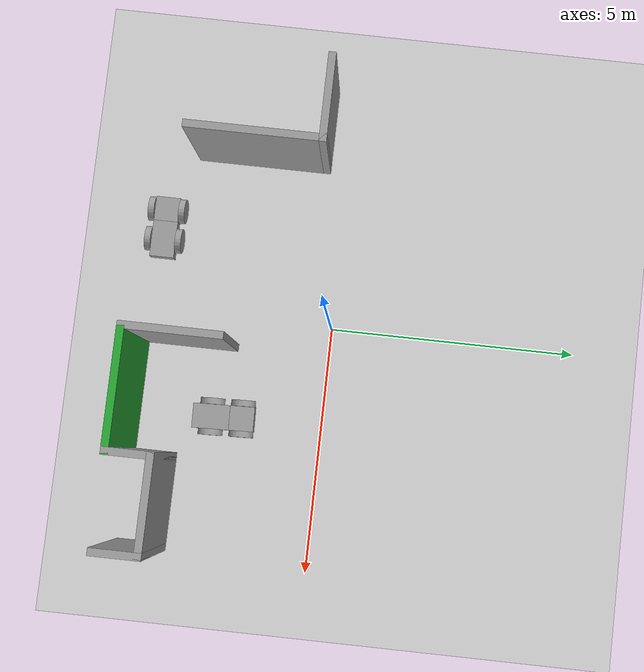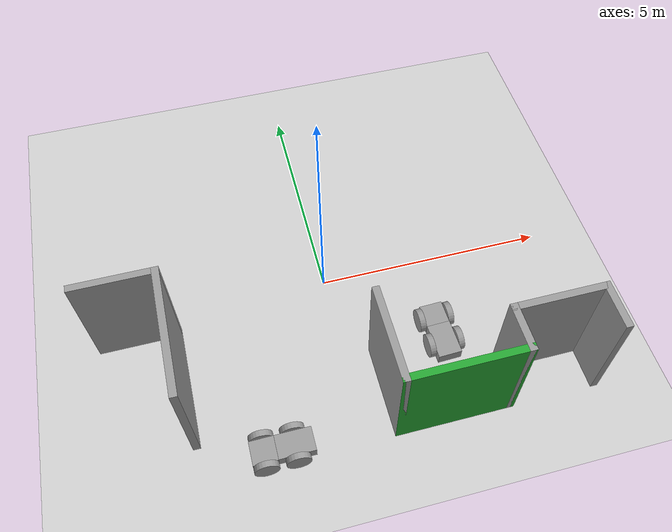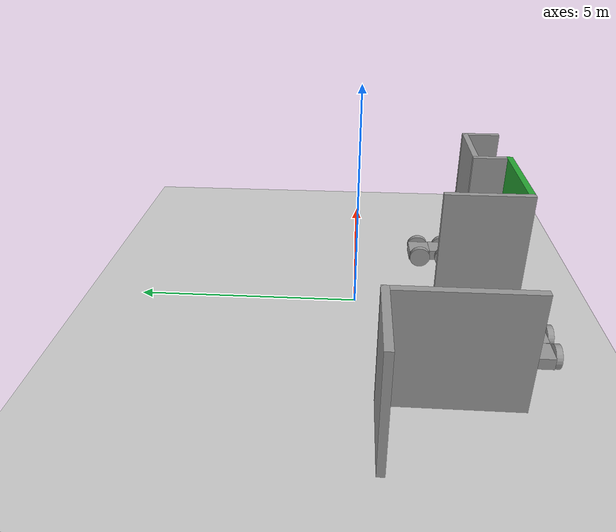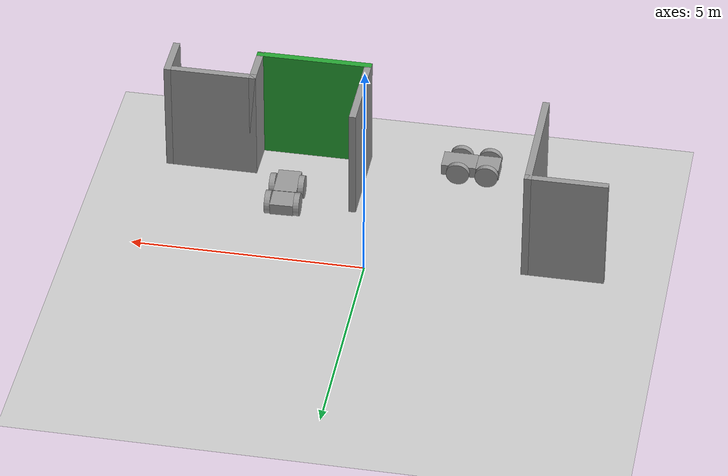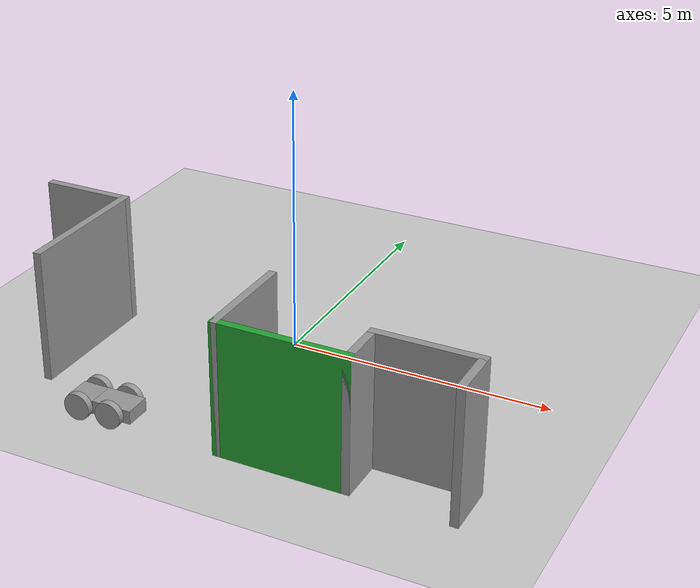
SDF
<sdf version="1.7">
 <world name="default">
  <model name="ground_plane">
   <static>1</static>
   <link name="link">
    <collision name="collision">
     <geometry><plane><normal>0 0 1</normal><size>100 100</size></plane></geometry>
     <surface><friction><ode><mu>100</mu><mu2>50</mu2></ode></friction></surface>
    </collision>
    <visual name="visual">
     <cast_shadows>0</cast_shadows>
     <geometry><plane><normal>0 0 1</normal><size>100 100</size></plane></geometry>
     <material>
      <script><uri>file://media/materials/scripts/gazebo.material</uri><name>Gazebo/Grey</name></script>
     </material>
    </visual>
   </link>
  </model>
  <model name="pj1_robo_1_clone">
   <link name="link_0">
    <pose>-0.3125 0 -0.006249 0 -0 0</pose>
    <inertial>
     <mass>1</mass>
     <inertia>
      <ixx>0.166667</ixx>
      <ixy>0</ixy>
      <ixz>0</ixz>
      <iyy>0.166667</iyy>
      <iyz>0</iyz>
      <izz>0.166667</izz>
     </inertia>
    </inertial>
    <visual name="visual">
     <geometry><box><size>0.5 0.5 0.25</size></box></geometry>
     <material>
      <lighting>1</lighting>
      <script><uri>file://media/materials/scripts/gazebo.material</uri><name>Gazebo/Grey</name></script>
      <shader type="pixel"><normal_map>__default__</normal_map></shader>
      <ambient>0.3 0.3 0.3 1</ambient>
      <diffuse>0.7 0.7 0.7 1</diffuse>
      <specular>0.01 0.01 0.01 1</specular>
      <emissive>0 0 0 1</emissive>
     </material>
    </visual>
    <collision name="collision">
     <geometry><box><size>0.5 0.5 0.25</size></box></geometry>
     <surface>
      <friction>
       <ode><mu>1</mu><mu2>1</mu2><fdir1>0 0 0</fdir1><slip1>0</slip1><slip2>0</slip2></ode>
       <torsional>
        <coefficient>1</coefficient>
        <patch_radius>0</patch_radius>
        <surface_radius>0</surface_radius>
        <use_patch_radius>1</use_patch_radius>
        <ode><slip>0</slip></ode>
       </torsional>
      </friction>
      <bounce><restitution_coefficient>0</restitution_coefficient><threshold>1e+06</threshold></bounce>
      <contact>
       <collide_without_contact>0</collide_without_contact>
       <collide_without_contact_bitmask>1</collide_without_contact_bitmask>
       <collide_bitmask>1</collide_bitmask>
       <ode>
        <soft_cfm>0</soft_cfm>
        <soft_erp>0.2</soft_erp>
        <kp>1e+13</kp>
        <kd>1</kd>
        <max_vel>0.01</max_vel>
        <min_depth>0</min_depth>
       </ode>
       <bullet>
        <split_impulse>1</split_impulse>
        <split_impulse_penetration_threshold>-0.01</split_impulse_penetration_threshold>
        <soft_cfm>0</soft_cfm>
        <soft_erp>0.2</soft_erp>
        <kp>1e+13</kp>
        <kd>1</kd>
       </bullet>
      </contact>
     </surface>
    </collision>
   </link>
   <link name="link_0_clone">
    <pose>0.3125 0 0.001251 0 -0 0</pose>
    <inertial>
     <mass>1</mass>
     <inertia>
      <ixx>0.166667</ixx>
      <ixy>0</ixy>
      <ixz>0</ixz>
      <iyy>0.166667</iyy>
      <iyz>0</iyz>
      <izz>0.166667</izz>
     </inertia>
    </inertial>
    <visual name="visual">
     <geometry><box><size>0.75 0.5 0.25</size></box></geometry>
     <material>
      <lighting>1</lighting>
      <script><uri>file://media/materials/scripts/gazebo.material</uri><name>Gazebo/Grey</name></script>
      <shader type="pixel"><normal_map>__default__</normal_map></shader>
      <ambient>0.3 0.3 0.3 1</ambient>
      <diffuse>0.7 0.7 0.7 1</diffuse>
      <specular>0.01 0.01 0.01 1</specular>
      <emissive>0 0 0 1</emissive>
     </material>
    </visual>
    <collision name="collision">
     <geometry><box><size>0.75 0.5 0.25</size></box></geometry>
     <surface>
      <friction>
       <ode><mu>1</mu><mu2>1</mu2><fdir1>0 0 0</fdir1><slip1>0</slip1><slip2>0</slip2></ode>
       <torsional>
        <coefficient>1</coefficient>
        <patch_radius>0</patch_radius>
        <surface_radius>0</surface_radius>
        <use_patch_radius>1</use_patch_radius>
        <ode><slip>0</slip></ode>
       </torsional>
      </friction>
      <bounce><restitution_coefficient>0</restitution_coefficient><threshold>1e+06</threshold></bounce>
      <contact>
       <collide_without_contact>0</collide_without_contact>
       <collide_without_contact_bitmask>1</collide_without_contact_bitmask>
       <collide_bitmask>1</collide_bitmask>
       <ode>
        <soft_cfm>0</soft_cfm>
        <soft_erp>0.2</soft_erp>
        <kp>1e+13</kp>
        <kd>1</kd>
        <max_vel>0.01</max_vel>
        <min_depth>0</min_depth>
       </ode>
       <bullet>
        <split_impulse>1</split_impulse>
        <split_impulse_penetration_threshold>-0.01</split_impulse_penetration_threshold>
        <soft_cfm>0</soft_cfm>
        <soft_erp>0.2</soft_erp>
        <kp>1e+13</kp>
        <kd>1</kd>
       </bullet>
      </contact>
     </surface>
    </collision>
   </link>
   <link name="link_1">
    <pose>-0.3125 -0.312524 0.001247 1.5707 -0 0</pose>
    <inertial>
     <mass>1</mass>
     <inertia><ixx>0.145833</ixx><ixy>0</ixy><ixz>0</ixz><iyy>0.145833</iyy><iyz>0</iyz><izz>0.125</izz></inertia>
    </inertial>
    <visual name="visual">
     <geometry><cylinder><radius>0.25</radius><length>0.125</length></cylinder></geometry>
     <material>
      <lighting>1</lighting>
      <script><uri>file://media/materials/scripts/gazebo.material</uri><name>Gazebo/Grey</name></script>
      <shader type="pixel"><normal_map>__default__</normal_map></shader>
      <ambient>0.3 0.3 0.3 1</ambient>
      <diffuse>0.7 0.7 0.7 1</diffuse>
      <specular>0.01 0.01 0.01 1</specular>
      <emissive>0 0 0 1</emissive>
     </material>
    </visual>
    <collision name="collision">
     <geometry><cylinder><radius>0.25</radius><length>0.125</length></cylinder></geometry>
     <surface>
      <friction>
       <ode><mu>1</mu><mu2>1</mu2><fdir1>0 0 0</fdir1><slip1>0</slip1><slip2>0</slip2></ode>
       <torsional>
        <coefficient>1</coefficient>
        <patch_radius>0</patch_radius>
        <surface_radius>0</surface_radius>
        <use_patch_radius>1</use_patch_radius>
        <ode><slip>0</slip></ode>
       </torsional>
      </friction>
      <bounce><restitution_coefficient>0</restitution_coefficient><threshold>1e+06</threshold></bounce>
      <contact>
       <collide_without_contact>0</collide_without_contact>
       <collide_without_contact_bitmask>1</collide_without_contact_bitmask>
       <collide_bitmask>1</collide_bitmask>
       <ode>
        <soft_cfm>0</soft_cfm>
        <soft_erp>0.2</soft_erp>
        <kp>1e+13</kp>
        <kd>1</kd>
        <max_vel>0.01</max_vel>
        <min_depth>0</min_depth>
       </ode>
       <bullet>
        <split_impulse>1</split_impulse>
        <split_impulse_penetration_threshold>-0.01</split_impulse_penetration_threshold>
        <soft_cfm>0</soft_cfm>
        <soft_erp>0.2</soft_erp>
        <kp>1e+13</kp>
        <kd>1</kd>
       </bullet>
      </contact>
     </surface>
    </collision>
   </link>
   <link name="link_1_clone">
    <pose>-0.3125 0.312524 0.001251 1.5707 -0 0</pose>
    <inertial>
     <mass>1</mass>
     <inertia><ixx>0.145833</ixx><ixy>0</ixy><ixz>0</ixz><iyy>0.145833</iyy><iyz>0</iyz><izz>0.125</izz></inertia>
    </inertial>
    <visual name="visual">
     <geometry><cylinder><radius>0.25</radius><length>0.125</length></cylinder></geometry>
     <material>
      <lighting>1</lighting>
      <script><uri>file://media/materials/scripts/gazebo.material</uri><name>Gazebo/Grey</name></script>
      <shader type="pixel"><normal_map>__default__</normal_map></shader>
      <ambient>0.3 0.3 0.3 1</ambient>
      <diffuse>0.7 0.7 0.7 1</diffuse>
      <specular>0.01 0.01 0.01 1</specular>
      <emissive>0 0 0 1</emissive>
     </material>
    </visual>
    <collision name="collision">
     <geometry><cylinder><radius>0.25</radius><length>0.125</length></cylinder></geometry>
     <surface>
      <friction>
       <ode><mu>1</mu><mu2>1</mu2><fdir1>0 0 0</fdir1><slip1>0</slip1><slip2>0</slip2></ode>
       <torsional>
        <coefficient>1</coefficient>
        <patch_radius>0</patch_radius>
        <surface_radius>0</surface_radius>
        <use_patch_radius>1</use_patch_radius>
        <ode><slip>0</slip></ode>
       </torsional>
      </friction>
      <bounce><restitution_coefficient>0</restitution_coefficient><threshold>1e+06</threshold></bounce>
      <contact>
       <collide_without_contact>0</collide_without_contact>
       <collide_without_contact_bitmask>1</collide_without_contact_bitmask>
       <collide_bitmask>1</collide_bitmask>
       <ode>
        <soft_cfm>0</soft_cfm>
        <soft_erp>0.2</soft_erp>
        <kp>1e+13</kp>
        <kd>1</kd>
        <max_vel>0.01</max_vel>
        <min_depth>0</min_depth>
       </ode>
       <bullet>
        <split_impulse>1</split_impulse>
        <split_impulse_penetration_threshold>-0.01</split_impulse_penetration_threshold>
        <soft_cfm>0</soft_cfm>
        <soft_erp>0.2</soft_erp>
        <kp>1e+13</kp>
        <kd>1</kd>
       </bullet>
      </contact>
     </surface>
    </collision>
   </link>
   <link name="link_1_clone_0">
    <pose>0.3125 -0.312524 0.001251 1.5707 -0 0</pose>
    <inertial>
     <mass>1</mass>
     <inertia><ixx>0.145833</ixx><ixy>0</ixy><ixz>0</ixz><iyy>0.145833</iyy><iyz>0</iyz><izz>0.125</izz></inertia>
    </inertial>
    <visual name="visual">
     <geometry><cylinder><radius>0.25</radius><length>0.125</length></cylinder></geometry>
     <material>
      <lighting>1</lighting>
      <script><uri>file://media/materials/scripts/gazebo.material</uri><name>Gazebo/Grey</name></script>
      <shader type="pixel"><normal_map>__default__</normal_map></shader>
      <ambient>0.3 0.3 0.3 1</ambient>
      <diffuse>0.7 0.7 0.7 1</diffuse>
      <specular>0.01 0.01 0.01 1</specular>
      <emissive>0 0 0 1</emissive>
     </material>
    </visual>
    <collision name="collision">
     <geometry><cylinder><radius>0.25</radius><length>0.125</length></cylinder></geometry>
     <surface>
      <friction>
       <ode><mu>1</mu><mu2>1</mu2><fdir1>0 0 0</fdir1><slip1>0</slip1><slip2>0</slip2></ode>
       <torsional>
        <coefficient>1</coefficient>
        <patch_radius>0</patch_radius>
        <surface_radius>0</surface_radius>
        <use_patch_radius>1</use_patch_radius>
        <ode><slip>0</slip></ode>
       </torsional>
      </friction>
      <bounce><restitution_coefficient>0</restitution_coefficient><threshold>1e+06</threshold></bounce>
      <contact>
       <collide_without_contact>0</collide_without_contact>
       <collide_without_contact_bitmask>1</collide_without_contact_bitmask>
       <collide_bitmask>1</collide_bitmask>
       <ode>
        <soft_cfm>0</soft_cfm>
        <soft_erp>0.2</soft_erp>
        <kp>1e+13</kp>
        <kd>1</kd>
        <max_vel>0.01</max_vel>
        <min_depth>0</min_depth>
       </ode>
       <bullet>
        <split_impulse>1</split_impulse>
        <split_impulse_penetration_threshold>-0.01</split_impulse_penetration_threshold>
        <soft_cfm>0</soft_cfm>
        <soft_erp>0.2</soft_erp>
        <kp>1e+13</kp>
        <kd>1</kd>
       </bullet>
      </contact>
     </surface>
    </collision>
   </link>
   <link name="link_1_clone_1">
    <pose>0.3125 0.312524 0.001251 1.5707 -0 0</pose>
    <inertial>
     <mass>1</mass>
     <inertia><ixx>0.145833</ixx><ixy>0</ixy><ixz>0</ixz><iyy>0.145833</iyy><iyz>0</iyz><izz>0.125</izz></inertia>
    </inertial>
    <visual name="visual">
     <geometry><cylinder><radius>0.25</radius><length>0.125</length></cylinder></geometry>
     <material>
      <lighting>1</lighting>
      <script><uri>file://media/materials/scripts/gazebo.material</uri><name>Gazebo/Grey</name></script>
      <shader type="pixel"><normal_map>__default__</normal_map></shader>
      <ambient>0.3 0.3 0.3 1</ambient>
      <diffuse>0.7 0.7 0.7 1</diffuse>
      <specular>0.01 0.01 0.01 1</specular>
      <emissive>0 0 0 1</emissive>
     </material>
    </visual>
    <collision name="collision">
     <geometry><cylinder><radius>0.25</radius><length>0.125</length></cylinder></geometry>
     <surface>
      <friction>
       <ode><mu>1</mu><mu2>1</mu2><fdir1>0 0 0</fdir1><slip1>0</slip1><slip2>0</slip2></ode>
       <torsional>
        <coefficient>1</coefficient>
        <patch_radius>0</patch_radius>
        <surface_radius>0</surface_radius>
        <use_patch_radius>1</use_patch_radius>
        <ode><slip>0</slip></ode>
       </torsional>
      </friction>
      <bounce><restitution_coefficient>0</restitution_coefficient><threshold>1e+06</threshold></bounce>
      <contact>
       <collide_without_contact>0</collide_without_contact>
       <collide_without_contact_bitmask>1</collide_without_contact_bitmask>
       <collide_bitmask>1</collide_bitmask>
       <ode>
        <soft_cfm>0</soft_cfm>
        <soft_erp>0.2</soft_erp>
        <kp>1e+13</kp>
        <kd>1</kd>
        <max_vel>0.01</max_vel>
        <min_depth>0</min_depth>
       </ode>
       <bullet>
        <split_impulse>1</split_impulse>
        <split_impulse_penetration_threshold>-0.01</split_impulse_penetration_threshold>
        <soft_cfm>0</soft_cfm>
        <soft_erp>0.2</soft_erp>
        <kp>1e+13</kp>
        <kd>1</kd>
       </bullet>
      </contact>
     </surface>
    </collision>
   </link>
   <joint name="link_0_JOINT_1" type="fixed">
    <parent>link_0</parent>
    <child>link_0_clone</child>
    <physics>
     <ode><limit><cfm>0</cfm><erp>0.2</erp></limit><suspension><cfm>0</cfm><erp>0.2</erp></suspension></ode>
    </physics>
   </joint>
   <joint name="link_0_JOINT_2" type="revolute">
    <parent>link_0</parent>
    <child>link_1</child>
    <axis>
     <xyz>1 0 0</xyz>
     <limit>
      <lower>-1.79769e+308</lower>
      <upper>1.79769e+308</upper>
      <effort>-1</effort>
      <velocity>-1</velocity>
     </limit>
     <dynamics>
      <spring_reference>0</spring_reference>
      <spring_stiffness>0</spring_stiffness>
      <damping>0</damping>
     </dynamics>
    </axis>
    <physics>
     <ode><limit><cfm>0</cfm><erp>0.2</erp></limit><suspension><cfm>0</cfm><erp>0.2</erp></suspension></ode>
    </physics>
   </joint>
   <joint name="link_0_JOINT_3" type="revolute">
    <parent>link_0</parent>
    <child>link_1_clone</child>
    <axis>
     <xyz>1 0 0</xyz>
     <limit>
      <lower>-1.79769e+308</lower>
      <upper>1.79769e+308</upper>
      <effort>-1</effort>
      <velocity>-1</velocity>
     </limit>
     <dynamics>
      <spring_reference>0</spring_reference>
      <spring_stiffness>0</spring_stiffness>
      <damping>0</damping>
     </dynamics>
    </axis>
    <physics>
     <ode><limit><cfm>0</cfm><erp>0.2</erp></limit><suspension><cfm>0</cfm><erp>0.2</erp></suspension></ode>
    </physics>
   </joint>
   <joint name="link_0_clone_JOINT_4" type="revolute">
    <parent>link_0_clone</parent>
    <child>link_1_clone_1</child>
    <axis>
     <xyz>1 0 0</xyz>
     <limit>
      <lower>-1.79769e+308</lower>
      <upper>1.79769e+308</upper>
      <effort>-1</effort>
      <velocity>-1</velocity>
     </limit>
     <dynamics>
      <spring_reference>0</spring_reference>
      <spring_stiffness>0</spring_stiffness>
      <damping>0</damping>
     </dynamics>
    </axis>
    <physics>
     <ode><limit><cfm>0</cfm><erp>0.2</erp></limit><suspension><cfm>0</cfm><erp>0.2</erp></suspension></ode>
    </physics>
   </joint>
   <joint name="link_0_clone_JOINT_5" type="revolute">
    <parent>link_0_clone</parent>
    <child>link_1_clone_0</child>
    <axis>
     <xyz>1 0 0</xyz>
     <limit>
      <lower>-1.79769e+308</lower>
      <upper>1.79769e+308</upper>
      <effort>-1</effort>
      <velocity>-1</velocity>
     </limit>
     <dynamics>
      <spring_reference>0</spring_reference>
      <spring_stiffness>0</spring_stiffness>
      <damping>0</damping>
     </dynamics>
    </axis>
    <physics>
     <ode><limit><cfm>0</cfm><erp>0.2</erp></limit><suspension><cfm>0</cfm><erp>0.2</erp></suspension></ode>
    </physics>
   </joint>
   <static>0</static>
   <pose>2.05212 -1.91405 0.24875 -3e-06 6e-06 -1.54149</pose>
  </model>
  <model name="pj1_robo_1_clone_clone">
   <link name="link_0">
    <pose>-0.3125 0 -0.006249 0 -0 0</pose>
    <inertial>
     <mass>1</mass>
     <inertia>
      <ixx>0.166667</ixx>
      <ixy>0</ixy>
      <ixz>0</ixz>
      <iyy>0.166667</iyy>
      <iyz>0</iyz>
      <izz>0.166667</izz>
     </inertia>
    </inertial>
    <visual name="visual">
     <geometry><box><size>0.5 0.5 0.25</size></box></geometry>
     <material>
      <lighting>1</lighting>
      <script><uri>file://media/materials/scripts/gazebo.material</uri><name>Gazebo/Grey</name></script>
      <shader type="pixel"><normal_map>__default__</normal_map></shader>
      <ambient>0.3 0.3 0.3 1</ambient>
      <diffuse>0.7 0.7 0.7 1</diffuse>
      <specular>0.01 0.01 0.01 1</specular>
      <emissive>0 0 0 1</emissive>
     </material>
    </visual>
    <collision name="collision">
     <geometry><box><size>0.5 0.5 0.25</size></box></geometry>
     <surface>
      <friction>
       <ode><mu>1</mu><mu2>1</mu2><fdir1>0 0 0</fdir1><slip1>0</slip1><slip2>0</slip2></ode>
       <torsional>
        <coefficient>1</coefficient>
        <patch_radius>0</patch_radius>
        <surface_radius>0</surface_radius>
        <use_patch_radius>1</use_patch_radius>
        <ode><slip>0</slip></ode>
       </torsional>
      </friction>
      <bounce><restitution_coefficient>0</restitution_coefficient><threshold>1e+06</threshold></bounce>
      <contact>
       <collide_without_contact>0</collide_without_contact>
       <collide_without_contact_bitmask>1</collide_without_contact_bitmask>
       <collide_bitmask>1</collide_bitmask>
       <ode>
        <soft_cfm>0</soft_cfm>
        <soft_erp>0.2</soft_erp>
        <kp>1e+13</kp>
        <kd>1</kd>
        <max_vel>0.01</max_vel>
        <min_depth>0</min_depth>
       </ode>
       <bullet>
        <split_impulse>1</split_impulse>
        <split_impulse_penetration_threshold>-0.01</split_impulse_penetration_threshold>
        <soft_cfm>0</soft_cfm>
        <soft_erp>0.2</soft_erp>
        <kp>1e+13</kp>
        <kd>1</kd>
       </bullet>
      </contact>
     </surface>
    </collision>
   </link>
   <link name="link_0_clone">
    <pose>0.3125 0 0.001251 0 -0 0</pose>
    <inertial>
     <mass>1</mass>
     <inertia>
      <ixx>0.166667</ixx>
      <ixy>0</ixy>
      <ixz>0</ixz>
      <iyy>0.166667</iyy>
      <iyz>0</iyz>
      <izz>0.166667</izz>
     </inertia>
    </inertial>
    <visual name="visual">
     <geometry><box><size>0.75 0.5 0.25</size></box></geometry>
     <material>
      <lighting>1</lighting>
      <script><uri>file://media/materials/scripts/gazebo.material</uri><name>Gazebo/Grey</name></script>
      <shader type="pixel"><normal_map>__default__</normal_map></shader>
      <ambient>0.3 0.3 0.3 1</ambient>
      <diffuse>0.7 0.7 0.7 1</diffuse>
      <specular>0.01 0.01 0.01 1</specular>
      <emissive>0 0 0 1</emissive>
     </material>
    </visual>
    <collision name="collision">
     <geometry><box><size>0.75 0.5 0.25</size></box></geometry>
     <surface>
      <friction>
       <ode><mu>1</mu><mu2>1</mu2><fdir1>0 0 0</fdir1><slip1>0</slip1><slip2>0</slip2></ode>
       <torsional>
        <coefficient>1</coefficient>
        <patch_radius>0</patch_radius>
        <surface_radius>0</surface_radius>
        <use_patch_radius>1</use_patch_radius>
        <ode><slip>0</slip></ode>
       </torsional>
      </friction>
      <bounce><restitution_coefficient>0</restitution_coefficient><threshold>1e+06</threshold></bounce>
      <contact>
       <collide_without_contact>0</collide_without_contact>
       <collide_without_contact_bitmask>1</collide_without_contact_bitmask>
       <collide_bitmask>1</collide_bitmask>
       <ode>
        <soft_cfm>0</soft_cfm>
        <soft_erp>0.2</soft_erp>
        <kp>1e+13</kp>
        <kd>1</kd>
        <max_vel>0.01</max_vel>
        <min_depth>0</min_depth>
       </ode>
       <bullet>
        <split_impulse>1</split_impulse>
        <split_impulse_penetration_threshold>-0.01</split_impulse_penetration_threshold>
        <soft_cfm>0</soft_cfm>
        <soft_erp>0.2</soft_erp>
        <kp>1e+13</kp>
        <kd>1</kd>
       </bullet>
      </contact>
     </surface>
    </collision>
   </link>
   <link name="link_1">
    <pose>-0.3125 -0.312524 0.001247 1.5707 -0 0</pose>
    <inertial>
     <mass>1</mass>
     <inertia><ixx>0.145833</ixx><ixy>0</ixy><ixz>0</ixz><iyy>0.145833</iyy><iyz>0</iyz><izz>0.125</izz></inertia>
    </inertial>
    <visual name="visual">
     <geometry><cylinder><radius>0.25</radius><length>0.125</length></cylinder></geometry>
     <material>
      <lighting>1</lighting>
      <script><uri>file://media/materials/scripts/gazebo.material</uri><name>Gazebo/Grey</name></script>
      <shader type="pixel"><normal_map>__default__</normal_map></shader>
      <ambient>0.3 0.3 0.3 1</ambient>
      <diffuse>0.7 0.7 0.7 1</diffuse>
      <specular>0.01 0.01 0.01 1</specular>
      <emissive>0 0 0 1</emissive>
     </material>
    </visual>
    <collision name="collision">
     <geometry><cylinder><radius>0.25</radius><length>0.125</length></cylinder></geometry>
     <surface>
      <friction>
       <ode><mu>1</mu><mu2>1</mu2><fdir1>0 0 0</fdir1><slip1>0</slip1><slip2>0</slip2></ode>
       <torsional>
        <coefficient>1</coefficient>
        <patch_radius>0</patch_radius>
        <surface_radius>0</surface_radius>
        <use_patch_radius>1</use_patch_radius>
        <ode><slip>0</slip></ode>
       </torsional>
      </friction>
      <bounce><restitution_coefficient>0</restitution_coefficient><threshold>1e+06</threshold></bounce>
      <contact>
       <collide_without_contact>0</collide_without_contact>
       <collide_without_contact_bitmask>1</collide_without_contact_bitmask>
       <collide_bitmask>1</collide_bitmask>
       <ode>
        <soft_cfm>0</soft_cfm>
        <soft_erp>0.2</soft_erp>
        <kp>1e+13</kp>
        <kd>1</kd>
        <max_vel>0.01</max_vel>
        <min_depth>0</min_depth>
       </ode>
       <bullet>
        <split_impulse>1</split_impulse>
        <split_impulse_penetration_threshold>-0.01</split_impulse_penetration_threshold>
        <soft_cfm>0</soft_cfm>
        <soft_erp>0.2</soft_erp>
        <kp>1e+13</kp>
        <kd>1</kd>
       </bullet>
      </contact>
     </surface>
    </collision>
   </link>
   <link name="link_1_clone">
    <pose>-0.3125 0.312524 0.001251 1.5707 -0 0</pose>
    <inertial>
     <mass>1</mass>
     <inertia><ixx>0.145833</ixx><ixy>0</ixy><ixz>0</ixz><iyy>0.145833</iyy><iyz>0</iyz><izz>0.125</izz></inertia>
    </inertial>
    <visual name="visual">
     <geometry><cylinder><radius>0.25</radius><length>0.125</length></cylinder></geometry>
     <material>
      <lighting>1</lighting>
      <script><uri>file://media/materials/scripts/gazebo.material</uri><name>Gazebo/Grey</name></script>
      <shader type="pixel"><normal_map>__default__</normal_map></shader>
      <ambient>0.3 0.3 0.3 1</ambient>
      <diffuse>0.7 0.7 0.7 1</diffuse>
      <specular>0.01 0.01 0.01 1</specular>
      <emissive>0 0 0 1</emissive>
     </material>
    </visual>
    <collision name="collision">
     <geometry><cylinder><radius>0.25</radius><length>0.125</length></cylinder></geometry>
     <surface>
      <friction>
       <ode><mu>1</mu><mu2>1</mu2><fdir1>0 0 0</fdir1><slip1>0</slip1><slip2>0</slip2></ode>
       <torsional>
        <coefficient>1</coefficient>
        <patch_radius>0</patch_radius>
        <surface_radius>0</surface_radius>
        <use_patch_radius>1</use_patch_radius>
        <ode><slip>0</slip></ode>
       </torsional>
      </friction>
      <bounce><restitution_coefficient>0</restitution_coefficient><threshold>1e+06</threshold></bounce>
      <contact>
       <collide_without_contact>0</collide_without_contact>
       <collide_without_contact_bitmask>1</collide_without_contact_bitmask>
       <collide_bitmask>1</collide_bitmask>
       <ode>
        <soft_cfm>0</soft_cfm>
        <soft_erp>0.2</soft_erp>
        <kp>1e+13</kp>
        <kd>1</kd>
        <max_vel>0.01</max_vel>
        <min_depth>0</min_depth>
       </ode>
       <bullet>
        <split_impulse>1</split_impulse>
        <split_impulse_penetration_threshold>-0.01</split_impulse_penetration_threshold>
        <soft_cfm>0</soft_cfm>
        <soft_erp>0.2</soft_erp>
        <kp>1e+13</kp>
        <kd>1</kd>
       </bullet>
      </contact>
     </surface>
    </collision>
   </link>
   <link name="link_1_clone_0">
    <pose>0.3125 -0.312524 0.001251 1.5707 -0 0</pose>
    <inertial>
     <mass>1</mass>
     <inertia><ixx>0.145833</ixx><ixy>0</ixy><ixz>0</ixz><iyy>0.145833</iyy><iyz>0</iyz><izz>0.125</izz></inertia>
    </inertial>
    <visual name="visual">
     <geometry><cylinder><radius>0.25</radius><length>0.125</length></cylinder></geometry>
     <material>
      <lighting>1</lighting>
      <script><uri>file://media/materials/scripts/gazebo.material</uri><name>Gazebo/Grey</name></script>
      <shader type="pixel"><normal_map>__default__</normal_map></shader>
      <ambient>0.3 0.3 0.3 1</ambient>
      <diffuse>0.7 0.7 0.7 1</diffuse>
      <specular>0.01 0.01 0.01 1</specular>
      <emissive>0 0 0 1</emissive>
     </material>
    </visual>
    <collision name="collision">
     <geometry><cylinder><radius>0.25</radius><length>0.125</length></cylinder></geometry>
     <surface>
      <friction>
       <ode><mu>1</mu><mu2>1</mu2><fdir1>0 0 0</fdir1><slip1>0</slip1><slip2>0</slip2></ode>
       <torsional>
        <coefficient>1</coefficient>
        <patch_radius>0</patch_radius>
        <surface_radius>0</surface_radius>
        <use_patch_radius>1</use_patch_radius>
        <ode><slip>0</slip></ode>
       </torsional>
      </friction>
      <bounce><restitution_coefficient>0</restitution_coefficient><threshold>1e+06</threshold></bounce>
      <contact>
       <collide_without_contact>0</collide_without_contact>
       <collide_without_contact_bitmask>1</collide_without_contact_bitmask>
       <collide_bitmask>1</collide_bitmask>
       <ode>
        <soft_cfm>0</soft_cfm>
        <soft_erp>0.2</soft_erp>
        <kp>1e+13</kp>
        <kd>1</kd>
        <max_vel>0.01</max_vel>
        <min_depth>0</min_depth>
       </ode>
       <bullet>
        <split_impulse>1</split_impulse>
        <split_impulse_penetration_threshold>-0.01</split_impulse_penetration_threshold>
        <soft_cfm>0</soft_cfm>
        <soft_erp>0.2</soft_erp>
        <kp>1e+13</kp>
        <kd>1</kd>
       </bullet>
      </contact>
     </surface>
    </collision>
   </link>
   <link name="link_1_clone_1">
    <pose>0.3125 0.312524 0.001251 1.5707 -0 0</pose>
    <inertial>
     <mass>1</mass>
     <inertia><ixx>0.145833</ixx><ixy>0</ixy><ixz>0</ixz><iyy>0.145833</iyy><iyz>0</iyz><izz>0.125</izz></inertia>
    </inertial>
    <visual name="visual">
     <geometry><cylinder><radius>0.25</radius><length>0.125</length></cylinder></geometry>
     <material>
      <lighting>1</lighting>
      <script><uri>file://media/materials/scripts/gazebo.material</uri><name>Gazebo/Grey</name></script>
      <shader type="pixel"><normal_map>__default__</normal_map></shader>
      <ambient>0.3 0.3 0.3 1</ambient>
      <diffuse>0.7 0.7 0.7 1</diffuse>
      <specular>0.01 0.01 0.01 1</specular>
      <emissive>0 0 0 1</emissive>
     </material>
    </visual>
    <collision name="collision">
     <geometry><cylinder><radius>0.25</radius><length>0.125</length></cylinder></geometry>
     <surface>
      <friction>
       <ode><mu>1</mu><mu2>1</mu2><fdir1>0 0 0</fdir1><slip1>0</slip1><slip2>0</slip2></ode>
       <torsional>
        <coefficient>1</coefficient>
        <patch_radius>0</patch_radius>
        <surface_radius>0</surface_radius>
        <use_patch_radius>1</use_patch_radius>
        <ode><slip>0</slip></ode>
       </torsional>
      </friction>
      <bounce><restitution_coefficient>0</restitution_coefficient><threshold>1e+06</threshold></bounce>
      <contact>
       <collide_without_contact>0</collide_without_contact>
       <collide_without_contact_bitmask>1</collide_without_contact_bitmask>
       <collide_bitmask>1</collide_bitmask>
       <ode>
        <soft_cfm>0</soft_cfm>
        <soft_erp>0.2</soft_erp>
        <kp>1e+13</kp>
        <kd>1</kd>
        <max_vel>0.01</max_vel>
        <min_depth>0</min_depth>
       </ode>
       <bullet>
        <split_impulse>1</split_impulse>
        <split_impulse_penetration_threshold>-0.01</split_impulse_penetration_threshold>
        <soft_cfm>0</soft_cfm>
        <soft_erp>0.2</soft_erp>
        <kp>1e+13</kp>
        <kd>1</kd>
       </bullet>
      </contact>
     </surface>
    </collision>
   </link>
   <joint name="link_0_JOINT_1" type="fixed">
    <parent>link_0</parent>
    <child>link_0_clone</child>
    <physics>
     <ode><limit><cfm>0</cfm><erp>0.2</erp></limit><suspension><cfm>0</cfm><erp>0.2</erp></suspension></ode>
    </physics>
   </joint>
   <joint name="link_0_JOINT_2" type="revolute">
    <parent>link_0</parent>
    <child>link_1</child>
    <axis>
     <xyz>1 0 0</xyz>
     <limit>
      <lower>-1.79769e+308</lower>
      <upper>1.79769e+308</upper>
      <effort>-1</effort>
      <velocity>-1</velocity>
     </limit>
     <dynamics>
      <spring_reference>0</spring_reference>
      <spring_stiffness>0</spring_stiffness>
      <damping>0</damping>
     </dynamics>
    </axis>
    <physics>
     <ode><limit><cfm>0</cfm><erp>0.2</erp></limit><suspension><cfm>0</cfm><erp>0.2</erp></suspension></ode>
    </physics>
   </joint>
   <joint name="link_0_JOINT_3" type="revolute">
    <parent>link_0</parent>
    <child>link_1_clone</child>
    <axis>
     <xyz>1 0 0</xyz>
     <limit>
      <lower>-1.79769e+308</lower>
      <upper>1.79769e+308</upper>
      <effort>-1</effort>
      <velocity>-1</velocity>
     </limit>
     <dynamics>
      <spring_reference>0</spring_reference>
      <spring_stiffness>0</spring_stiffness>
      <damping>0</damping>
     </dynamics>
    </axis>
    <physics>
     <ode><limit><cfm>0</cfm><erp>0.2</erp></limit><suspension><cfm>0</cfm><erp>0.2</erp></suspension></ode>
    </physics>
   </joint>
   <joint name="link_0_clone_JOINT_4" type="revolute">
    <parent>link_0_clone</parent>
    <child>link_1_clone_1</child>
    <axis>
     <xyz>1 0 0</xyz>
     <limit>
      <lower>-1.79769e+308</lower>
      <upper>1.79769e+308</upper>
      <effort>-1</effort>
      <velocity>-1</velocity>
     </limit>
     <dynamics>
      <spring_reference>0</spring_reference>
      <spring_stiffness>0</spring_stiffness>
      <damping>0</damping>
     </dynamics>
    </axis>
    <physics>
     <ode><limit><cfm>0</cfm><erp>0.2</erp></limit><suspension><cfm>0</cfm><erp>0.2</erp></suspension></ode>
    </physics>
   </joint>
   <joint name="link_0_clone_JOINT_5" type="revolute">
    <parent>link_0_clone</parent>
    <child>link_1_clone_0</child>
    <axis>
     <xyz>1 0 0</xyz>
     <limit>
      <lower>-1.79769e+308</lower>
      <upper>1.79769e+308</upper>
      <effort>-1</effort>
      <velocity>-1</velocity>
     </limit>
     <dynamics>
      <spring_reference>0</spring_reference>
      <spring_stiffness>0</spring_stiffness>
      <damping>0</damping>
     </dynamics>
    </axis>
    <physics>
     <ode><limit><cfm>0</cfm><erp>0.2</erp></limit><suspension><cfm>0</cfm><erp>0.2</erp></suspension></ode>
    </physics>
   </joint>
   <static>0</static>
   <pose>-1.77033 -3.63429 0.24875 0 3e-06 0.000708</pose>
  </model>
  <model name="building_1">
   <link name="Wall_0">
    <pose>-3.265 0.1775 0 0 -0 1.5708</pose>
    <visual name="Wall_0_Visual">
     <pose>0 0 1.25 0 -0 0</pose>
     <geometry><box><size>2.75 0.15 2.5</size></box></geometry>
     <material>
      <script><uri>file://media/materials/scripts/gazebo.material</uri><name>Gazebo/Grey</name></script>
      <ambient>1 1 1 1</ambient>
      <shader type="pixel"/>
     </material>
     <meta><layer>0</layer></meta>
    </visual>
    <collision name="Wall_0_Collision">
     <pose>0 0 1.25 0 -0 0</pose>
     <geometry><box><size>2.75 0.15 2.5</size></box></geometry>
     <surface>
      <friction>
       <ode><mu>1</mu><mu2>1</mu2><fdir1>0 0 0</fdir1><slip1>0</slip1><slip2>0</slip2></ode>
       <torsional>
        <coefficient>1</coefficient>
        <patch_radius>0</patch_radius>
        <surface_radius>0</surface_radius>
        <use_patch_radius>1</use_patch_radius>
        <ode><slip>0</slip></ode>
       </torsional>
      </friction>
      <bounce><restitution_coefficient>0</restitution_coefficient><threshold>1e+06</threshold></bounce>
      <contact>
       <collide_without_contact>0</collide_without_contact>
       <collide_without_contact_bitmask>1</collide_without_contact_bitmask>
       <collide_bitmask>1</collide_bitmask>
       <ode>
        <soft_cfm>0</soft_cfm>
        <soft_erp>0.2</soft_erp>
        <kp>1e+13</kp>
        <kd>1</kd>
        <max_vel>0.01</max_vel>
        <min_depth>0</min_depth>
       </ode>
       <bullet>
        <split_impulse>1</split_impulse>
        <split_impulse_penetration_threshold>-0.01</split_impulse_penetration_threshold>
        <soft_cfm>0</soft_cfm>
        <soft_erp>0.2</soft_erp>
        <kp>1e+13</kp>
        <kd>1</kd>
       </bullet>
      </contact>
     </surface>
    </collision>
   </link>
   <link name="Wall_1">
    <pose>-4.065 1.4775 0 0 -0 3.14159</pose>
    <visual name="Wall_1_Visual">
     <pose>0 0 1.25 0 -0 0</pose>
     <geometry><box><size>1.75 0.15 2.5</size></box></geometry>
     <material>
      <script><uri>file://media/materials/scripts/gazebo.material</uri><name>Gazebo/Grey</name></script>
      <ambient>1 1 1 1</ambient>
      <shader type="pixel"/>
     </material>
     <meta><layer>0</layer></meta>
    </visual>
    <collision name="Wall_1_Collision">
     <pose>0 0 1.25 0 -0 0</pose>
     <geometry><box><size>1.75 0.15 2.5</size></box></geometry>
     <surface>
      <friction>
       <ode><mu>1</mu><mu2>1</mu2><fdir1>0 0 0</fdir1><slip1>0</slip1><slip2>0</slip2></ode>
       <torsional>
        <coefficient>1</coefficient>
        <patch_radius>0</patch_radius>
        <surface_radius>0</surface_radius>
        <use_patch_radius>1</use_patch_radius>
        <ode><slip>0</slip></ode>
       </torsional>
      </friction>
      <bounce><restitution_coefficient>0</restitution_coefficient><threshold>1e+06</threshold></bounce>
      <contact>
       <collide_without_contact>0</collide_without_contact>
       <collide_without_contact_bitmask>1</collide_without_contact_bitmask>
       <collide_bitmask>1</collide_bitmask>
       <ode>
        <soft_cfm>0</soft_cfm>
        <soft_erp>0.2</soft_erp>
        <kp>1e+13</kp>
        <kd>1</kd>
        <max_vel>0.01</max_vel>
        <min_depth>0</min_depth>
       </ode>
       <bullet>
        <split_impulse>1</split_impulse>
        <split_impulse_penetration_threshold>-0.01</split_impulse_penetration_threshold>
        <soft_cfm>0</soft_cfm>
        <soft_erp>0.2</soft_erp>
        <kp>1e+13</kp>
        <kd>1</kd>
       </bullet>
      </contact>
     </surface>
    </collision>
   </link>
   <link name="Wall_4">
    <pose>0.665 -0.9375 0 0 0 -1.5708</pose>
    <visual name="Wall_4_Visual">
     <pose>0 0 1.25 0 -0 0</pose>
     <geometry><box><size>2 0.15 2.5</size></box></geometry>
     <material>
      <script><uri>file://media/materials/scripts/gazebo.material</uri><name>Gazebo/Grey</name></script>
      <ambient>1 1 1 1</ambient>
      <shader type="pixel"/>
     </material>
     <meta><layer>0</layer></meta>
    </visual>
    <collision name="Wall_4_Collision">
     <pose>0 0 1.25 0 -0 0</pose>
     <geometry><box><size>2 0.15 2.5</size></box></geometry>
     <surface>
      <friction>
       <ode><mu>1</mu><mu2>1</mu2><fdir1>0 0 0</fdir1><slip1>0</slip1><slip2>0</slip2></ode>
       <torsional>
        <coefficient>1</coefficient>
        <patch_radius>0</patch_radius>
        <surface_radius>0</surface_radius>
        <use_patch_radius>1</use_patch_radius>
        <ode><slip>0</slip></ode>
       </torsional>
      </friction>
      <bounce><restitution_coefficient>0</restitution_coefficient><threshold>1e+06</threshold></bounce>
      <contact>
       <collide_without_contact>0</collide_without_contact>
       <collide_without_contact_bitmask>1</collide_without_contact_bitmask>
       <collide_bitmask>1</collide_bitmask>
       <ode>
        <soft_cfm>0</soft_cfm>
        <soft_erp>0.2</soft_erp>
        <kp>1e+13</kp>
        <kd>1</kd>
        <max_vel>0.01</max_vel>
        <min_depth>0</min_depth>
       </ode>
       <bullet>
        <split_impulse>1</split_impulse>
        <split_impulse_penetration_threshold>-0.01</split_impulse_penetration_threshold>
        <soft_cfm>0</soft_cfm>
        <soft_erp>0.2</soft_erp>
        <kp>1e+13</kp>
        <kd>1</kd>
       </bullet>
      </contact>
     </surface>
    </collision>
   </link>
   <link name="Wall_5">
    <pose>1.84 -1.8625 0 0 -0 0</pose>
    <inertial>
     <mass>1</mass>
     <inertia><ixx>1</ixx><ixy>0</ixy><ixz>0</ixz><iyy>1</iyy><iyz>0</iyz><izz>1</izz></inertia>
    </inertial>
    <visual name="Wall_5_Visual">
     <pose>0 0 1.25 0 -0 0</pose>
     <geometry><box><size>2.5 0.15 2.5</size></box></geometry>
     <material>
      <script><uri>file://media/materials/scripts/gazebo.material</uri><name>Gazebo/Green</name></script>
      <ambient>1 1 1 1</ambient>
      <shader type="pixel"><normal_map>__default__</normal_map></shader>
      <diffuse>0.7 0.7 0.7 1</diffuse>
      <specular>0.01 0.01 0.01 1</specular>
      <emissive>0 0 0 1</emissive>
     </material>
     <meta><layer>0</layer></meta>
    </visual>
    <collision name="Wall_5_Collision">
     <pose>0 0 1.25 0 -0 0</pose>
     <geometry><box><size>2.5 0.15 2.5</size></box></geometry>
     <surface>
      <friction>
       <ode><mu>1</mu><mu2>1</mu2><fdir1>0 0 0</fdir1><slip1>0</slip1><slip2>0</slip2></ode>
       <torsional>
        <coefficient>1</coefficient>
        <patch_radius>0</patch_radius>
        <surface_radius>0</surface_radius>
        <use_patch_radius>1</use_patch_radius>
        <ode><slip>0</slip></ode>
       </torsional>
      </friction>
      <bounce><restitution_coefficient>0</restitution_coefficient><threshold>1e+06</threshold></bounce>
      <contact>
       <collide_without_contact>0</collide_without_contact>
       <collide_without_contact_bitmask>1</collide_without_contact_bitmask>
       <collide_bitmask>1</collide_bitmask>
       <ode>
        <soft_cfm>0</soft_cfm>
        <soft_erp>0.2</soft_erp>
        <kp>1e+13</kp>
        <kd>1</kd>
        <max_vel>0.01</max_vel>
        <min_depth>0</min_depth>
       </ode>
       <bullet>
        <split_impulse>1</split_impulse>
        <split_impulse_penetration_threshold>-0.01</split_impulse_penetration_threshold>
        <soft_cfm>0</soft_cfm>
        <soft_erp>0.2</soft_erp>
        <kp>1e+13</kp>
        <kd>1</kd>
       </bullet>
      </contact>
     </surface>
    </collision>
   </link>
   <link name="Wall_6">
    <pose>3.015 -1.4375 0 0 -0 1.5708</pose>
    <visual name="Wall_6_Visual">
     <pose>0 0 1.25 0 -0 0</pose>
     <geometry><box><size>1 0.15 2.5</size></box></geometry>
     <material>
      <script><uri>file://media/materials/scripts/gazebo.material</uri><name>Gazebo/Grey</name></script>
      <ambient>1 1 1 1</ambient>
      <shader type="pixel"/>
     </material>
     <meta><layer>0</layer></meta>
    </visual>
    <collision name="Wall_6_Collision">
     <pose>0 0 1.25 0 -0 0</pose>
     <geometry><box><size>1 0.15 2.5</size></box></geometry>
     <surface>
      <friction>
       <ode><mu>1</mu><mu2>1</mu2><fdir1>0 0 0</fdir1><slip1>0</slip1><slip2>0</slip2></ode>
       <torsional>
        <coefficient>1</coefficient>
        <patch_radius>0</patch_radius>
        <surface_radius>0</surface_radius>
        <use_patch_radius>1</use_patch_radius>
        <ode><slip>0</slip></ode>
       </torsional>
      </friction>
      <bounce><restitution_coefficient>0</restitution_coefficient><threshold>1e+06</threshold></bounce>
      <contact>
       <collide_without_contact>0</collide_without_contact>
       <collide_without_contact_bitmask>1</collide_without_contact_bitmask>
       <collide_bitmask>1</collide_bitmask>
       <ode>
        <soft_cfm>0</soft_cfm>
        <soft_erp>0.2</soft_erp>
        <kp>1e+13</kp>
        <kd>1</kd>
        <max_vel>0.01</max_vel>
        <min_depth>0</min_depth>
       </ode>
       <bullet>
        <split_impulse>1</split_impulse>
        <split_impulse_penetration_threshold>-0.01</split_impulse_penetration_threshold>
        <soft_cfm>0</soft_cfm>
        <soft_erp>0.2</soft_erp>
        <kp>1e+13</kp>
        <kd>1</kd>
       </bullet>
      </contact>
     </surface>
    </collision>
   </link>
   <link name="Wall_7">
    <pose>3.94 -1.0125 0 0 -0 0</pose>
    <visual name="Wall_7_Visual">
     <pose>0 0 1.25 0 -0 0</pose>
     <geometry><box><size>2 0.15 2.5</size></box></geometry>
     <material>
      <script><uri>file://media/materials/scripts/gazebo.material</uri><name>Gazebo/Grey</name></script>
      <ambient>1 1 1 1</ambient>
      <shader type="pixel"/>
     </material>
     <meta><layer>0</layer></meta>
    </visual>
    <collision name="Wall_7_Collision">
     <pose>0 0 1.25 0 -0 0</pose>
     <geometry><box><size>2 0.15 2.5</size></box></geometry>
     <surface>
      <friction>
       <ode><mu>1</mu><mu2>1</mu2><fdir1>0 0 0</fdir1><slip1>0</slip1><slip2>0</slip2></ode>
       <torsional>
        <coefficient>1</coefficient>
        <patch_radius>0</patch_radius>
        <surface_radius>0</surface_radius>
        <use_patch_radius>1</use_patch_radius>
        <ode><slip>0</slip></ode>
       </torsional>
      </friction>
      <bounce><restitution_coefficient>0</restitution_coefficient><threshold>1e+06</threshold></bounce>
      <contact>
       <collide_without_contact>0</collide_without_contact>
       <collide_without_contact_bitmask>1</collide_without_contact_bitmask>
       <collide_bitmask>1</collide_bitmask>
       <ode>
        <soft_cfm>0</soft_cfm>
        <soft_erp>0.2</soft_erp>
        <kp>1e+13</kp>
        <kd>1</kd>
        <max_vel>0.01</max_vel>
        <min_depth>0</min_depth>
       </ode>
       <bullet>
        <split_impulse>1</split_impulse>
        <split_impulse_penetration_threshold>-0.01</split_impulse_penetration_threshold>
        <soft_cfm>0</soft_cfm>
        <soft_erp>0.2</soft_erp>
        <kp>1e+13</kp>
        <kd>1</kd>
       </bullet>
      </contact>
     </surface>
    </collision>
   </link>
   <link name="Wall_8">
    <pose>4.865 -1.4375 0 0 0 -1.5708</pose>
    <visual name="Wall_8_Visual">
     <pose>0 0 1.25 0 -0 0</pose>
     <geometry><box><size>1 0.15 2.5</size></box></geometry>
     <material>
      <script><uri>file://media/materials/scripts/gazebo.material</uri><name>Gazebo/Grey</name></script>
      <ambient>1 1 1 1</ambient>
      <shader type="pixel"/>
     </material>
     <meta><layer>0</layer></meta>
    </visual>
    <collision name="Wall_8_Collision">
     <pose>0 0 1.25 0 -0 0</pose>
     <geometry><box><size>1 0.15 2.5</size></box></geometry>
     <surface>
      <friction>
       <ode><mu>1</mu><mu2>1</mu2><fdir1>0 0 0</fdir1><slip1>0</slip1><slip2>0</slip2></ode>
       <torsional>
        <coefficient>1</coefficient>
        <patch_radius>0</patch_radius>
        <surface_radius>0</surface_radius>
        <use_patch_radius>1</use_patch_radius>
        <ode><slip>0</slip></ode>
       </torsional>
      </friction>
      <bounce><restitution_coefficient>0</restitution_coefficient><threshold>1e+06</threshold></bounce>
      <contact>
       <collide_without_contact>0</collide_without_contact>
       <collide_without_contact_bitmask>1</collide_without_contact_bitmask>
       <collide_bitmask>1</collide_bitmask>
       <ode>
        <soft_cfm>0</soft_cfm>
        <soft_erp>0.2</soft_erp>
        <kp>1e+13</kp>
        <kd>1</kd>
        <max_vel>0.01</max_vel>
        <min_depth>0</min_depth>
       </ode>
       <bullet>
        <split_impulse>1</split_impulse>
        <split_impulse_penetration_threshold>-0.01</split_impulse_penetration_threshold>
        <soft_cfm>0</soft_cfm>
        <soft_erp>0.2</soft_erp>
        <kp>1e+13</kp>
        <kd>1</kd>
       </bullet>
      </contact>
     </surface>
    </collision>
   </link>
   <static>1</static>
   <pose>-0.075 -1.9375 0 0 -0 0</pose>
  </model>
 </world>
</sdf>
